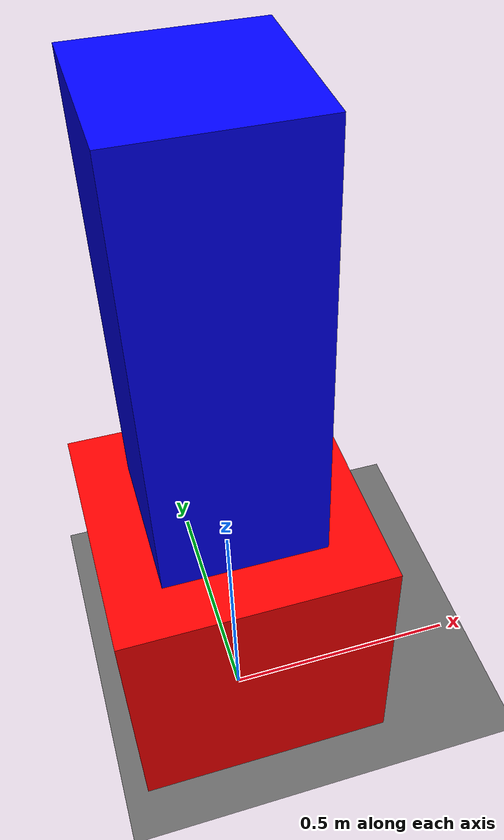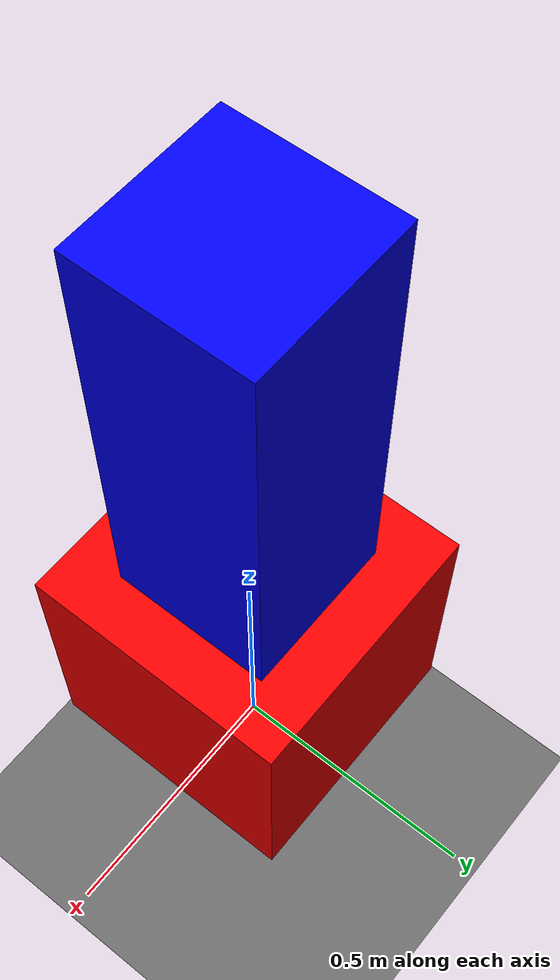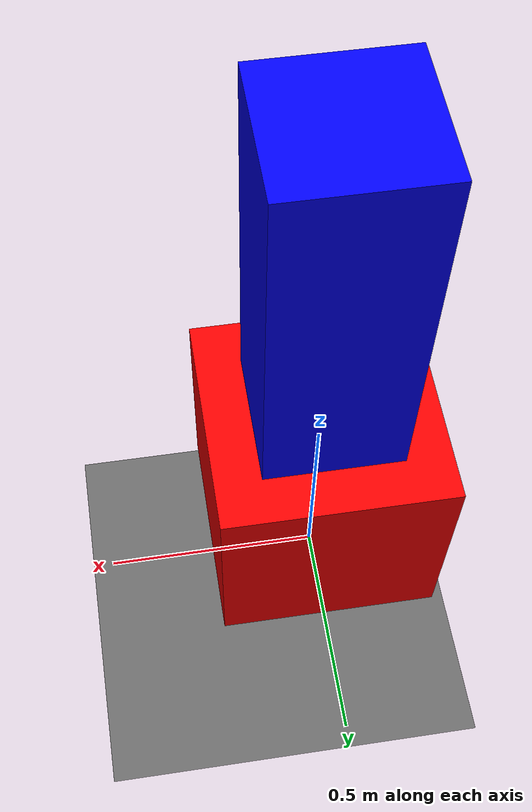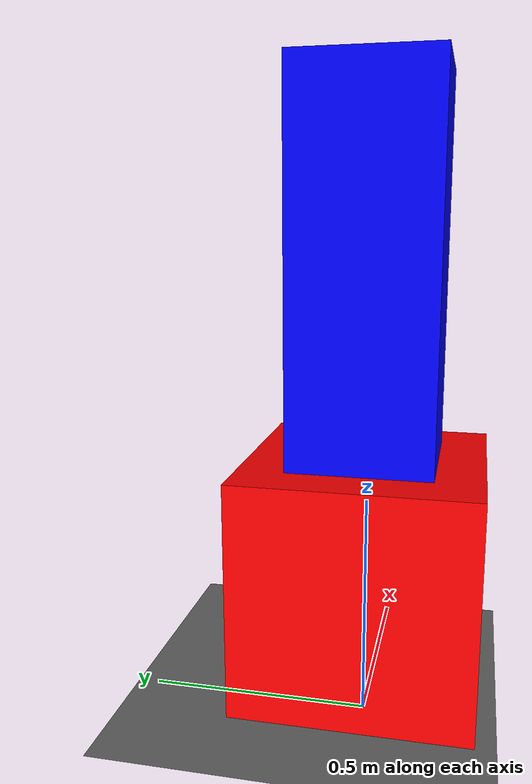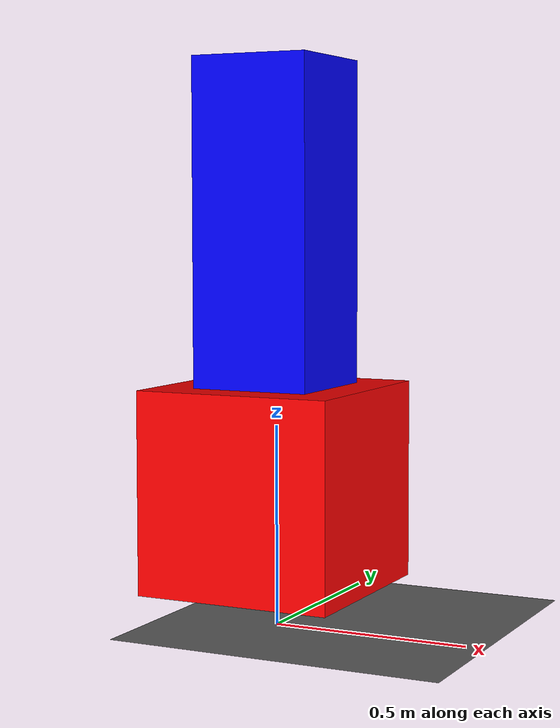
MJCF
<mujoco>
  <include file="./common/materials.xml"/>
  <option timestep="0.01"/>
  <statistic center="0 0 0" extent="1.5"/>
  <worldbody>
    <light name="light" pos="0 0 3" directional = "true"/>
    <camera name="fixed" pos="0 -3 3" xyaxes="1 0 0 0 1 1"/>
    <geom name="floor" type="plane" size="5 5 0.1" pos="0 0 0" rgba="0.4 0.4 0.4 1" material="motphys-ground"/>

    <body name="base" pos="0 0 0.1">
      <body name="slot" pos="0 0 0">
        <joint name="slider" type="slide" axis="1 0 0" limited="true" range = "-2 2"/>
        <geom name="cube_A" type="box" size="0.25 0.25 0.25" pos="0 0 0.25" rgba="1 0 0 1"/>

        <body name="bar" pos="0 0 0.5">
          <joint name="ball" type="ball" limited="true" range = "0 20"/>
          <geom name="bar" type="box" size="0.15 0.15 0.4" pos="0 0 0.4" rgba="0 0 1 1"/>
        </body>
      </body>
    </body>
  </worldbody>

  <actuator>
    <motor name="actuator_slider" joint="slider" gear="500"/>
  </actuator>
</mujoco>

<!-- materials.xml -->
<!--
Common textures, colors and materials to be used throughout this suite. Some
materials such as xxx_highlight are activated on occurence of certain events,
for example receiving a positive reward.
-->
<mujoco>
  <asset>
    <texture name="motphys-ground" type="2d" file="motphys-ground.png" />
    <material name="motphys-ground" texture="motphys-ground" texuniform="true"
      texrepeat="0.4 0.4" />
  </asset>
</mujoco>
